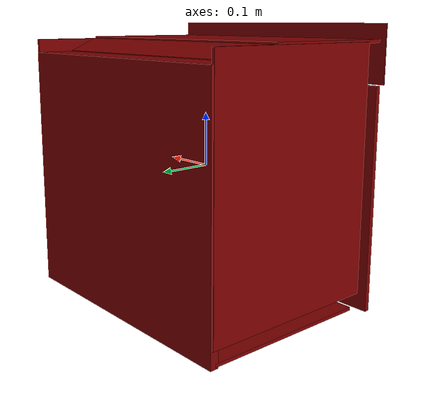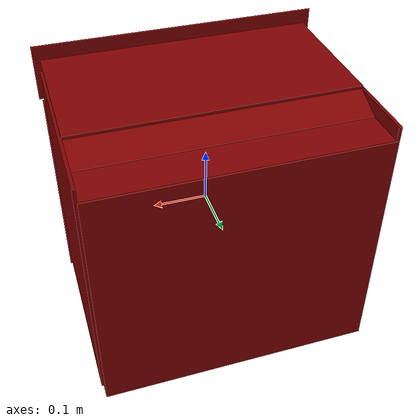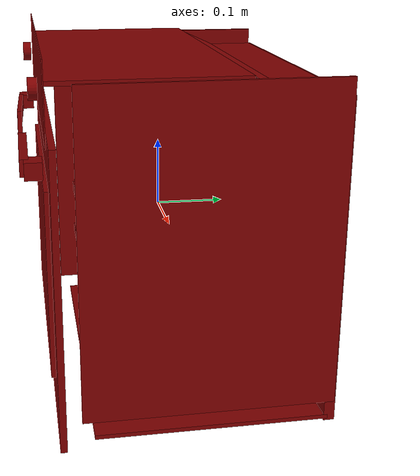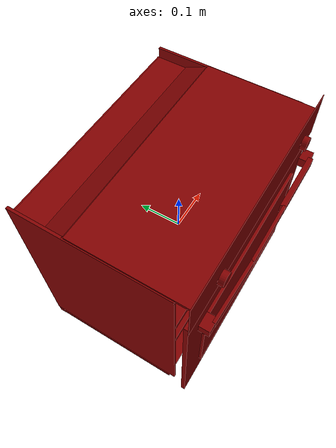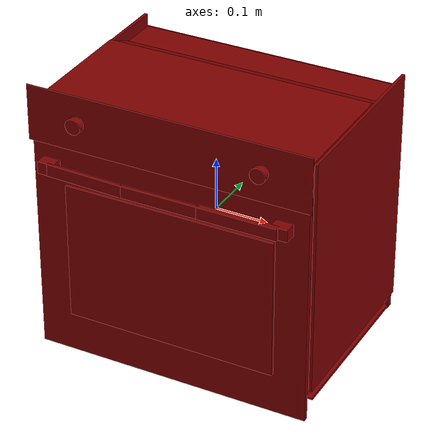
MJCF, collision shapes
<mujoco model="model">
  <compiler angle="radian"/>
  <asset>
    <mesh file="visuals/Body001.obj" name="Body001_vis"/>
    <mesh file="visuals/Container001.obj" name="Container001_vis"/>
    <mesh file="visuals/Door001.obj" name="Door001_vis"/>
    <mesh file="visuals/Door001_Clear.obj" name="Door001_Clear_vis"/>
    <mesh file="visuals/Knob001.obj" name="Knob001_vis"/>
    <mesh file="visuals/Knob002.obj" name="Knob002_vis"/>
    <mesh file="visuals/Shelf001.obj" name="Shelf001_vis"/>
    <texture file="visuals/T_BC001.png" name="Body001_material" type="2d"/>
    <material name="Body001_material" rgba="1 1 1 1.0" texture="Body001_material" shininess="0.5" specular="3"/>
    <texture file="visuals/T_BC001.png" name="Container001_material" type="2d"/>
    <material name="Container001_material" rgba="1 1 1 1.0" texture="Container001_material" shininess="0.5" specular="6"/>
    <texture file="visuals/T_BC001.png" name="Door001_material" type="2d"/>
    <material name="Door001_material" rgba="1 1 1 1.0" texture="Door001_material" shininess="0.5" specular="3"/>
    <texture file="visuals/T_BC001.png" name="Door001_Clear_material" type="2d"/>
    <material name="Door001_Clear_material" rgba="1 1 1 0.800000011920929" texture="Door001_Clear_material" shininess="0.5" specular="0.3103448502657381"/>
    <texture file="visuals/T_BC001.png" name="Knob001_material" type="2d"/>
    <material name="Knob001_material" rgba="1 1 1 1.0" texture="Knob001_material" shininess="0.5" specular="0.3103448502657381"/>
    <texture file="visuals/T_BC001.png" name="Knob002_material" type="2d"/>
    <material name="Knob002_material" rgba="1 1 1 1.0" texture="Knob002_material" shininess="0.5" specular="0.3103448502657381"/>
    <texture file="visuals/T_BC001.png" name="Shelf001_material" type="2d"/>
    <material name="Shelf001_material" rgba="1 1 1 1.0" texture="Shelf001_material" shininess="0.5" specular="6"/>
  </asset>
  <default>
    <default class="visual">
      <geom conaffinity="0" contype="0" group="1" type="mesh"/>
    </default>
    <default class="collision">
      <geom group="0" rgba="0.5 0 0 0.5"/>
    </default>
    <default class="spawn">
      <geom group="0" rgba="1 1 1 0.5" contype="0" conaffinity="0"/>
      <site group="0" rgba="1 1 1 0.5"/>
    </default>
    <default class="region">
      <geom group="1" conaffinity="0" contype="0" rgba="0 1 0 0"/>
    </default>
  </default>
  <worldbody>
    <body>
      <body name="object">
        <geom mesh="Body001_vis" type="mesh" solimp="0.998 0.998 0.001" solref="0.001 1" density="100" friction="0.95 0.3 0.1" class="visual" material="Body001_material"/>
        <geom class="collision" type="box" pos="-0.25356781482696533 0.030922919511795044 0.008629723452031612" size="0.003014857182279229 0.1742521971464157 0.22559085488319397" quat="1.0 0.0 0.0 0.0"/>
        <geom class="collision" type="box" pos="0.25721806287765503 0.030922919511795044 0.008629723452031612" size="0.003014856716617942 0.1742522418498993 0.22559091448783875" quat="1.0 0.0 0.0 0.0"/>
        <geom class="collision" type="box" pos="0.0005653143161907792 0.20077921450138092 -0.019542938098311424" size="0.25448817014694214 0.007664488162845373 0.2292354702949524" quat="1.0 0.0 0.0 0.0"/>
        <geom class="collision" type="box" pos="0.000565314432606101 0.160851389169693 0.20675206184387207" size="0.2544921934604645 0.04447482153773308 0.0030148259829729795" quat="1.0 0.0 0.0 0.0"/>
        <geom class="collision" type="box" pos="0.000565314432606101 0.10640713572502136 0.22025063633918762" size="0.003014849964529276 0.2544921934604645 0.028582042083144188" quat="0.5936643481254578 0.38413891196250916 0.3841388523578644 -0.593664288520813"/>
        <geom class="collision" type="box" pos="0.0005653135012835264 -0.04897317662835121 0.23503252863883972" size="0.2544921934604645 0.12710106372833252 0.003014927264302969" quat="1.0 0.0 0.0 0.0"/>
        <geom class="collision" type="box" pos="0.000565314432606101 -0.17703408002853394 0.21253466606140137" size="0.2671322226524353 0.0006827154429629445 0.052923064678907394" quat="1.0 0.0 0.0 0.0"/>
        <geom class="collision" type="box" pos="0.0005653519765473902 0.035712871700525284 -0.24314117431640625" size="0.2544938325881958 0.16248394548892975 0.003014893503859639" quat="1.0 0.0 0.0 0.0"/>
        <body name="Container001">
          <joint axis="0.0 -1.0 0.0" pos="-0.0022772648371756077 0.014978778548538685 -0.02402372844517231" limited="true" name="Container001_joint" range="0.0 0.2" type="slide" damping="1" frictionloss="1" armature=".01" stiffness="0.05"/>
          <geom mesh="Container001_vis" type="mesh" solimp="0.998 0.998 0.001" solref="0.001 1" density="100" friction="0.95 0.3 0.1" class="visual" material="Container001_material"/>
          <geom class="collision" type="box" pos="0.0034321194980293512 0.013333380222320557 -0.030260665342211723" size="0.2176644206047058 0.13125304877758026 0.008213545195758343" quat="1.0 0.0 0.0 0.0"/>
        </body>
        <body name="Door001">
          <joint axis="1.0 0.0 0.0" pos="-5.4060015827417374e-05 -0.17736928164958954 -0.24463950097560883" limited="true" name="Door001_joint" range="0.0 1.15" type="hinge" damping="5" frictionloss="1" armature=".01" stiffness="0.05"/>
          <geom mesh="Door001_vis" type="mesh" solimp="0.998 0.998 0.001" solref="0.001 1" density="100" friction="0.95 0.3 0.1" class="visual" material="Door001_material"/>
          <geom class="collision" type="box" pos="0.0009000943973660469 -0.168915256857872 -0.049712568521499634" size="0.2612549066543579 0.004692927002906799 0.20764678716659546" quat="1.0 0.0 0.0 0.0"/>
          <geom class="collision" type="box" pos="0.22110596299171448 -0.19176335632801056 0.1247517466545105" size="0.015607861801981926 0.011398655362427235 0.011398655362427235" quat="1.0 0.0 0.0 0.0"/>
          <geom class="collision" type="box" pos="-0.22049954533576965 -0.19176335632801056 0.1247517466545105" size="0.015607869252562523 0.011398660950362682 0.011398660950362682" quat="1.0 0.0 0.0 0.0"/>
          <geom class="collision" type="box" pos="0.001501724123954773 -0.20500588417053223 0.1247517466545105" size="0.0735284686088562 0.0032432442530989647 0.011398712173104286" quat="1.0 0.0 0.0 0.0"/>
          <geom class="collision" type="box" pos="0.1457395702600479 -0.20274510979652405 0.1247517466545105" size="0.07359613478183746 0.005732421297580004 0.011398712173104286" quat="1.0 0.0 0.0 0.0"/>
          <geom class="collision" type="box" pos="-0.14361155033111572 -0.20300555229187012 0.1247517466545105" size="0.0735284686088562 0.0032432442530989647 0.011398712173104286" quat="0.999872088432312 0.0 -0.0 -0.01599564217031002"/>
          <body name="Door001_Clear">
            <geom mesh="Door001_Clear_vis" type="mesh" solimp="0.998 0.998 0.001" solref="0.001 1" density="100" friction="0.95 0.3 0.1" class="visual" material="Door001_Clear_material"/>
            <geom class="collision" type="box" pos="0.0018851065542548895 -0.17674724757671356 -0.04527357220649719" size="0.19900409877300262 0.0031390755902975798 0.132785364985466" quat="1.0 0.0 0.0 0.0"/>
          </body>
        </body>
        <body name="Knob001">
          <joint axis="0.0 1.0 0.0" pos="-0.16862890124320984 -0.18830403685569763 0.2147851586341858" limited="true" name="Knob001_joint" range="0.0 6.283185307179586" type="hinge" damping="0.05" armature="0.001"/>
          <geom mesh="Knob001_vis" type="mesh" solimp="0.998 0.998 0.001" solref="0.001 1" density="100" friction="0.95 0.3 0.1" class="visual" material="Knob001_material"/>
          <geom class="collision" type="cylinder" pos="-0.16874589025974274 -0.18765446543693542 0.214882954955101" size="0.014560258947312832 0.0060626002959907055" quat="0.7071067094802856 0.7071068286895752 0.0 0.0"/>
        </body>
        <body name="Knob002">
          <joint axis="0.0 -1.0 0.0" pos="0.17612847685813904 -0.1882973164319992 0.21553157269954681" limited="true" name="Knob002_joint" range="-1.0471975511965976 3.141592653589793" type="hinge" damping="0.05" armature="0.001"/>
          <geom mesh="Knob002_vis" type="mesh" solimp="0.998 0.998 0.001" solref="0.001 1" density="100" friction="0.95 0.3 0.1" class="visual" material="Knob002_material"/>
          <geom class="collision" type="cylinder" pos="0.17623311281204224 -0.18765446543693542 0.21548950672149658" size="0.014560258947312832 0.0060626002959907055" quat="0.7071067094802856 0.7071068286895752 0.0 0.0"/>
        </body>
        <body name="Shelf001">
          <joint axis="0.0 -1.0 0.0" pos="0.005771757569164038 -0.008786979131400585 -0.10569850355386734" limited="true" name="Shelf001_joint" range="0.0 0.2" type="slide" damping="1" frictionloss="1" armature=".01" stiffness="0.05"/>
          <geom mesh="Shelf001_vis" type="mesh" solimp="0.998 0.998 0.001" solref="0.001 1" density="100" friction="0.95 0.3 0.1" class="visual" material="Shelf001_material"/>
          <geom class="collision" type="box" pos="0.0 0.013333380222320557 -0.10957460105419159" size="0.21766462922096252 0.13125310838222504 0.008213548921048641" quat="1.0 0.0 0.0 0.0"/>
        </body>
        <geom class="region" name="reg_main" type="box" pos="0.0 0.013647045008838177 1.3520306652026193e-08" size="0.2662435472011566 0.194512277841568 0.26491445302963257"/>
        <geom class="region" name="reg_int" type="box" pos="-0.0005463212728500366 0.012589432299137115 -0.043173931539058685" size="0.2493419498205185 0.18082191795110703 0.1997678354382515"/>
      </body>
    </body>
  </worldbody>
  <actuator>
    <motor name="Container001_joint_actuator" joint="Container001_joint" gear="10"/>
    <motor name="Door001_joint_actuator" joint="Door001_joint" gear="50"/>
    <motor name="Knob001_joint_actuator" joint="Knob001_joint" gear="50"/>
    <motor name="Knob002_joint_actuator" joint="Knob002_joint" gear="50"/>
    <motor name="Shelf001_joint_actuator" joint="Shelf001_joint" gear="50"/>
  </actuator>
</mujoco>
